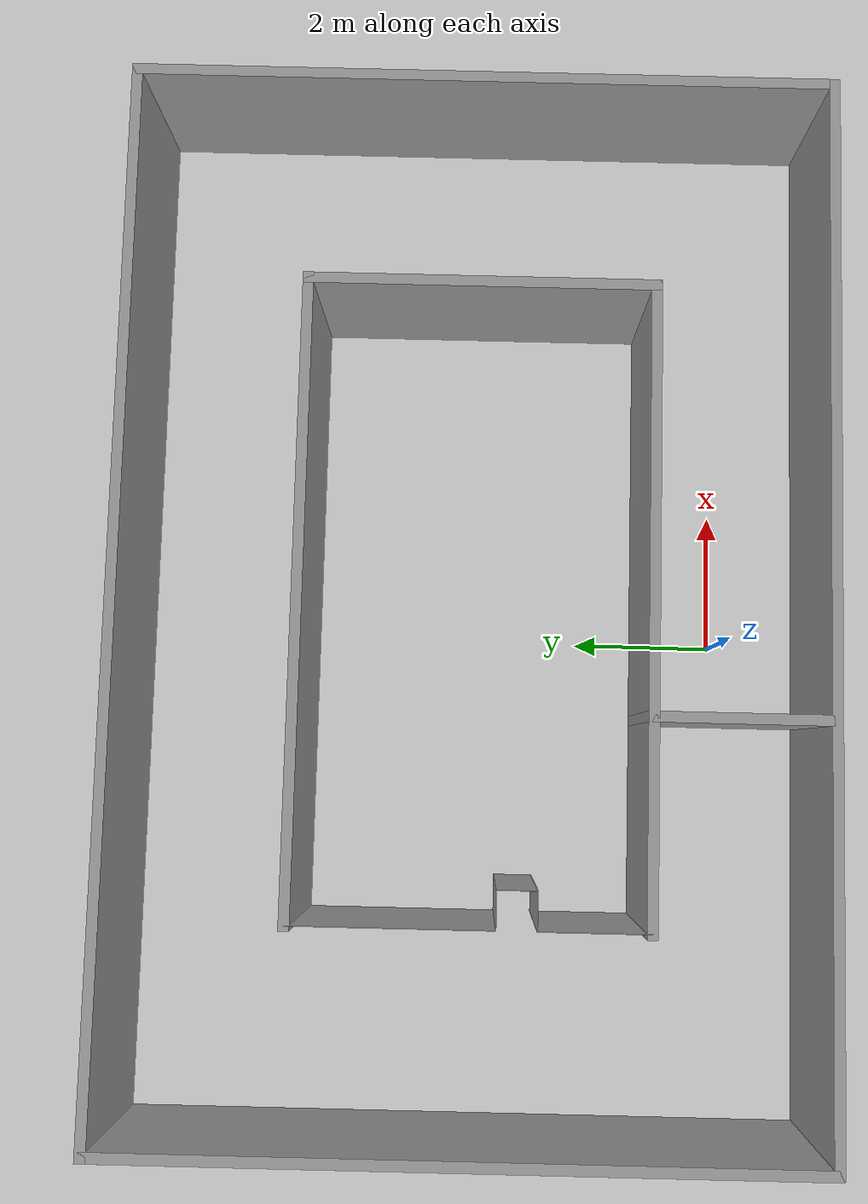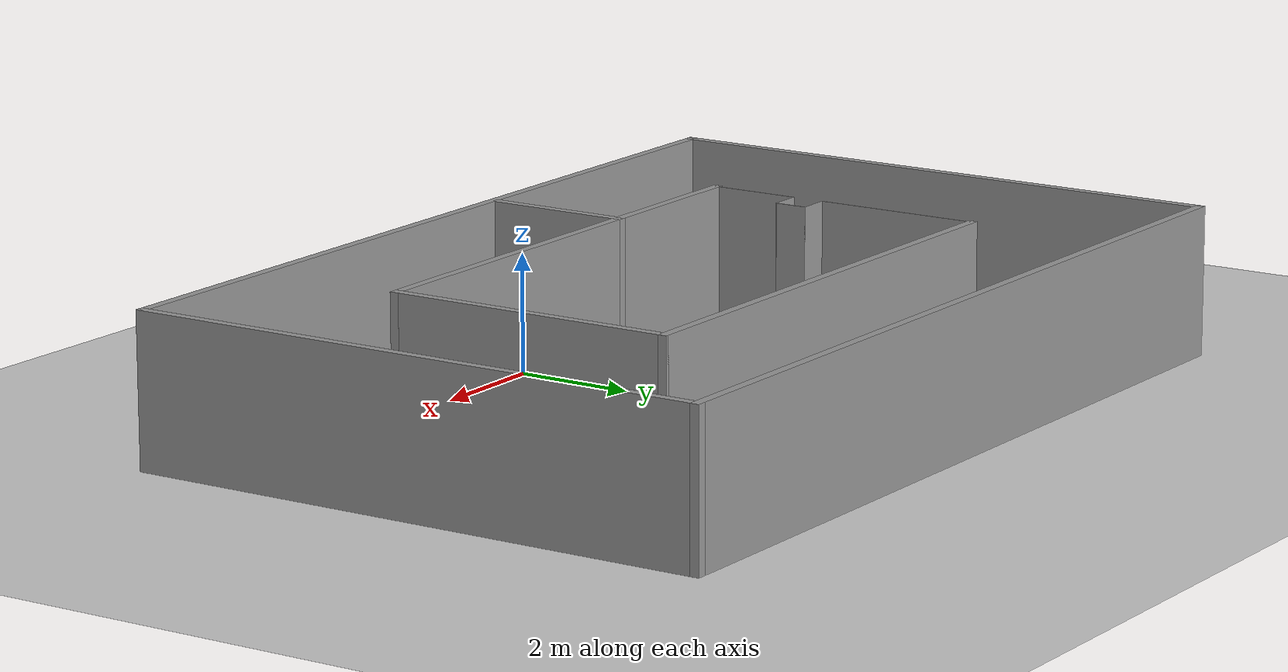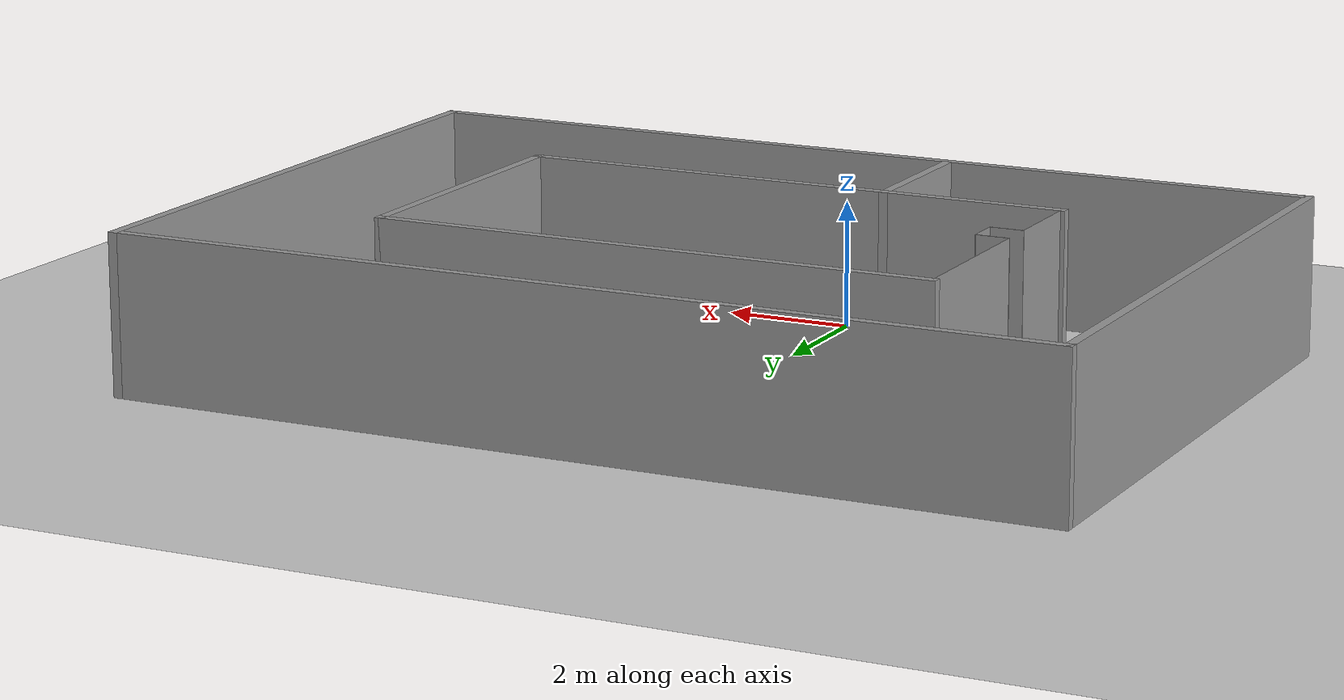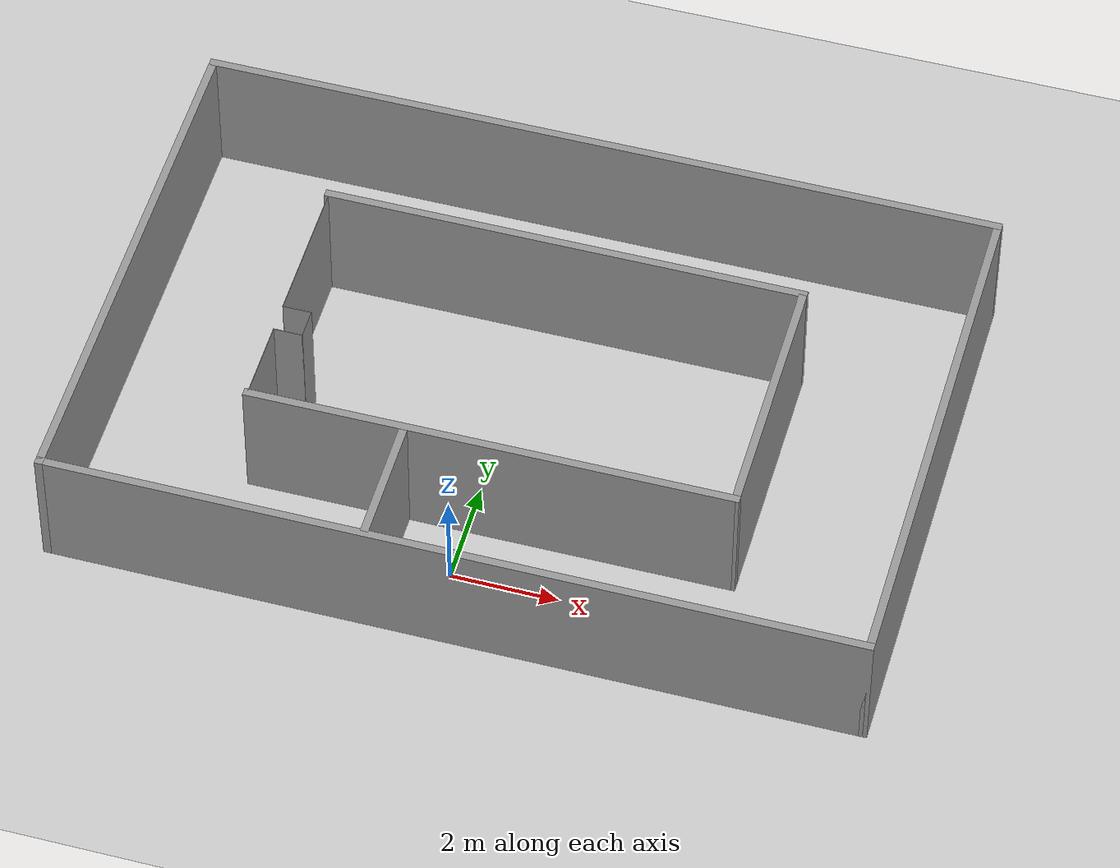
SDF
<sdf version="1.6">
 <world name="default">
  <light name="sun" type="directional">
   <pose>0 0 10 0 -0 0</pose>
   <diffuse>0.8 0.8 0.8 1</diffuse>
   <specular>0.2 0.2 0.2 1</specular>
   <attenuation>
    <range>1000</range>
    <constant>0.9</constant>
    <linear>0.01</linear>
    <quadratic>0.001</quadratic>
   </attenuation>
   <direction>-0.5 0.1 -0.9</direction>
  </light>
  <model name="ground_plane">
   <static>1</static>
   <link name="link">
    <collision name="collision">
     <geometry><plane><normal>0 0 1</normal><size>100 100</size></plane></geometry>
     <surface><friction><ode><mu>100</mu><mu2>50</mu2></ode></friction></surface>
    </collision>
    <visual name="visual">
     <cast_shadows>0</cast_shadows>
     <geometry><plane><normal>0 0 1</normal><size>100 100</size></plane></geometry>
     <material>
      <script><uri>file://media/materials/scripts/gazebo.material</uri><name>Gazebo/Grey</name></script>
     </material>
    </visual>
   </link>
  </model>
  <gravity>0 0 -9.8</gravity>
  <magnetic_field>6e-06 2.3e-05 -4.2e-05</magnetic_field>
  <atmosphere type="adiabatic"/>
  <physics name="default_physics" default="0" type="ode">
   <max_step_size>0.001</max_step_size>
   <real_time_factor>1</real_time_factor>
   <real_time_update_rate>1000</real_time_update_rate>
  </physics>
  <scene><ambient>0.4 0.4 0.4 1</ambient><background>0.7 0.7 0.7 1</background><shadows>1</shadows></scene>
  <spherical_coordinates>
   <surface_model>EARTH_WGS84</surface_model>
   <latitude_deg>0</latitude_deg>
   <longitude_deg>0</longitude_deg>
   <elevation>0</elevation>
   <heading_deg>0</heading_deg>
  </spherical_coordinates>
  <model name="circle_parking">
   <pose>0.415639 3.56388 0 0 -0 0</pose>
   <link name="Wall_12">
    <collision name="Wall_12_Collision">
     <geometry><box><size>15 0.15 2.5</size></box></geometry>
     <pose>0 0 1.25 0 -0 0</pose>
    </collision>
    <visual name="Wall_12_Visual">
     <pose>0 0 1.25 0 -0 0</pose>
     <geometry><box><size>15 0.15 2.5</size></box></geometry>
     <material>
      <script><uri>file://media/materials/scripts/gazebo.material</uri><name>Gazebo/Grey</name></script>
      <ambient>1 1 1 1</ambient>
     </material>
     <meta><layer>0</layer></meta>
    </visual>
    <pose>0 -4.925 0 0 -0 0</pose>
   </link>
   <link name="Wall_13">
    <collision name="Wall_13_Collision">
     <geometry><box><size>10 0.15 2.5</size></box></geometry>
     <pose>0 0 1.25 0 -0 0</pose>
    </collision>
    <visual name="Wall_13_Visual">
     <pose>0 0 1.25 0 -0 0</pose>
     <geometry><box><size>10 0.15 2.5</size></box></geometry>
     <material>
      <script><uri>file://media/materials/scripts/gazebo.material</uri><name>Gazebo/Grey</name></script>
      <ambient>1 1 1 1</ambient>
     </material>
     <meta><layer>0</layer></meta>
    </visual>
    <pose>7.425 -0 0 0 -0 1.5708</pose>
   </link>
   <link name="Wall_14">
    <collision name="Wall_14_Collision">
     <geometry><box><size>15 0.15 2.5</size></box></geometry>
     <pose>0 0 1.25 0 -0 0</pose>
    </collision>
    <visual name="Wall_14_Visual">
     <pose>0 0 1.25 0 -0 0</pose>
     <geometry><box><size>15 0.15 2.5</size></box></geometry>
     <material>
      <script><uri>file://media/materials/scripts/gazebo.material</uri><name>Gazebo/Grey</name></script>
      <ambient>1 1 1 1</ambient>
     </material>
     <meta><layer>0</layer></meta>
    </visual>
    <pose>0 4.925 0 0 -0 3.14159</pose>
   </link>
   <link name="Wall_15">
    <collision name="Wall_15_Collision">
     <geometry><box><size>10 0.15 2.5</size></box></geometry>
     <pose>0 0 1.25 0 -0 0</pose>
    </collision>
    <visual name="Wall_15_Visual">
     <pose>0 0 1.25 0 -0 0</pose>
     <geometry><box><size>10 0.15 2.5</size></box></geometry>
     <material>
      <script><uri>file://media/materials/scripts/gazebo.material</uri><name>Gazebo/Grey</name></script>
      <ambient>1 1 1 1</ambient>
     </material>
     <meta><layer>0</layer></meta>
    </visual>
    <pose>-7.425 -0 0 0 -0 -1.5708</pose>
   </link>
   <link name="Wall_17">
    <collision name="Wall_17_Collision">
     <geometry><box><size>9 0.15 2.5</size></box></geometry>
     <pose>0 0 1.25 0 -0 0</pose>
    </collision>
    <visual name="Wall_17_Visual">
     <pose>0 0 1.25 0 -0 0</pose>
     <geometry><box><size>9 0.15 2.5</size></box></geometry>
     <material>
      <script><uri>file://media/materials/scripts/gazebo.material</uri><name>Gazebo/Grey</name></script>
      <ambient>1 1 1 1</ambient>
     </material>
     <meta><layer>0</layer></meta>
    </visual>
    <pose>0.014124 2.40104 0 0 -0 -5.5e-05</pose>
   </link>
   <link name="Wall_18">
    <collision name="Wall_18_Collision">
     <geometry><box><size>5 0.15 2.5</size></box></geometry>
     <pose>0 0 1.25 0 -0 0</pose>
    </collision>
    <visual name="Wall_18_Visual">
     <pose>0 0 1.25 0 -0 0</pose>
     <geometry><box><size>5 0.15 2.5</size></box></geometry>
     <material>
      <script><uri>file://media/materials/scripts/gazebo.material</uri><name>Gazebo/Grey</name></script>
      <ambient>1 1 1 1</ambient>
     </material>
     <meta><layer>0</layer></meta>
    </visual>
    <pose>4.43889 -0.024203 0 0 -0 -1.5708</pose>
   </link>
   <link name="Wall_19">
    <collision name="Wall_19_Collision">
     <geometry><box><size>9 0.15 2.5</size></box></geometry>
     <pose>0 0 1.25 0 -0 0</pose>
    </collision>
    <visual name="Wall_19_Visual">
     <pose>0 0 1.25 0 -0 0</pose>
     <geometry><box><size>9 0.15 2.5</size></box></geometry>
     <material>
      <script><uri>file://media/materials/scripts/gazebo.material</uri><name>Gazebo/Grey</name></script>
      <ambient>1 1 1 1</ambient>
     </material>
     <meta><layer>0</layer></meta>
    </visual>
    <pose>0.014124 -2.45896 0 0 -0 -3.13939</pose>
   </link>
   <link name="Wall_22">
    <collision name="Wall_22_Collision">
     <geometry><box><size>2.5 0.15 2.5</size></box></geometry>
     <pose>0 0 1.25 0 -0 0</pose>
    </collision>
    <visual name="Wall_22_Visual">
     <pose>0 0 1.25 0 -0 0</pose>
     <geometry><box><size>2.5 0.15 2.5</size></box></geometry>
     <material>
      <script><uri>file://media/materials/scripts/gazebo.material</uri><name>Gazebo/Grey</name></script>
      <ambient>1 1 1 1</ambient>
     </material>
     <meta><layer>0</layer></meta>
    </visual>
    <pose>-1.5372 -3.63716 0 0 -0 -1.5708</pose>
   </link>
   <link name="Wall_28">
    <collision name="Wall_28_Collision">
     <geometry><box><size>1.53 0.01 2.5</size></box></geometry>
     <pose>0 0 1.25 0 -0 0</pose>
    </collision>
    <visual name="Wall_28_Visual">
     <pose>0 0 1.25 0 -0 0</pose>
     <geometry><box><size>1.53 0.01 2.5</size></box></geometry>
     <material>
      <script><uri>file://media/materials/scripts/gazebo.material</uri><name>Gazebo/Grey</name></script>
      <ambient>1 1 1 1</ambient>
     </material>
     <meta><layer>0</layer></meta>
    </visual>
    <pose>-4.41064 -1.70872 0 0 -0 -1.5708</pose>
   </link>
   <link name="Wall_30">
    <collision name="Wall_30_Collision">
     <geometry><box><size>2.81 0.01 2.5</size></box></geometry>
     <pose>0 0 1.25 0 -0 0</pose>
    </collision>
    <visual name="Wall_30_Visual">
     <pose>0 0 1.25 0 -0 0</pose>
     <geometry><box><size>2.81 0.01 2.5</size></box></geometry>
     <material>
      <script><uri>file://media/materials/scripts/gazebo.material</uri><name>Gazebo/Grey</name></script>
      <ambient>1 1 1 1</ambient>
     </material>
     <meta><layer>0</layer></meta>
    </visual>
    <pose>-4.41064 1.00128 0 0 -0 1.5708</pose>
   </link>
   <link name="Wall_39">
    <collision name="Wall_39_Collision">
     <geometry><box><size>0.54 0.01 2.5</size></box></geometry>
     <pose>0 0 1.25 0 -0 0</pose>
    </collision>
    <visual name="Wall_39_Visual">
     <pose>0 0 1.25 0 -0 0</pose>
     <geometry><box><size>0.54 0.01 2.5</size></box></geometry>
     <material>
      <script><uri>file://media/materials/scripts/gazebo.material</uri><name>Gazebo/Grey</name></script>
      <ambient>1 1 1 1</ambient>
     </material>
     <meta><layer>0</layer></meta>
    </visual>
    <pose>-4.14564 -0.39872 0 0 -0 0</pose>
   </link>
   <link name="Wall_41">
    <collision name="Wall_41_Collision">
     <geometry><box><size>0.54 0.01 2.5</size></box></geometry>
     <pose>0 0 1.25 0 -0 0</pose>
    </collision>
    <visual name="Wall_41_Visual">
     <pose>0 0 1.25 0 -0 0</pose>
     <geometry><box><size>0.54 0.01 2.5</size></box></geometry>
     <material>
      <script><uri>file://media/materials/scripts/gazebo.material</uri><name>Gazebo/Grey</name></script>
      <ambient>1 1 1 1</ambient>
     </material>
     <meta><layer>0</layer></meta>
    </visual>
    <pose>-4.14564 -0.94872 0 0 -0 0</pose>
   </link>
   <link name="Wall_43">
    <collision name="Wall_43_Collision">
     <geometry><box><size>0.56 0.01 2.5</size></box></geometry>
     <pose>0 0 1.25 0 -0 0</pose>
    </collision>
    <visual name="Wall_43_Visual">
     <pose>0 0 1.25 0 -0 0</pose>
     <geometry><box><size>0.56 0.01 2.5</size></box></geometry>
     <material>
      <script><uri>file://media/materials/scripts/gazebo.material</uri><name>Gazebo/Grey</name></script>
      <ambient>1 1 1 1</ambient>
     </material>
     <meta><layer>0</layer></meta>
    </visual>
    <pose>-3.88064 -0.67372 0 0 -0 -1.5708</pose>
   </link>
   <static>1</static>
  </model>
 </world>
</sdf>
